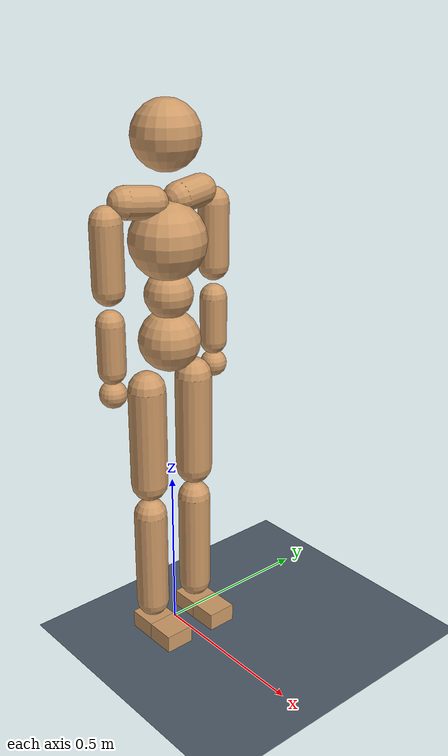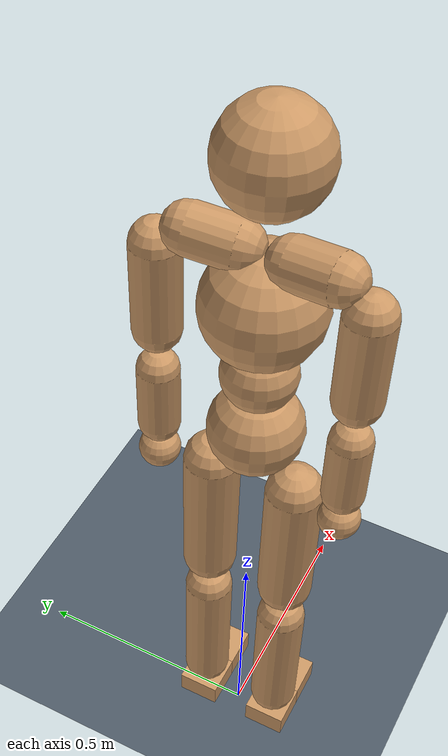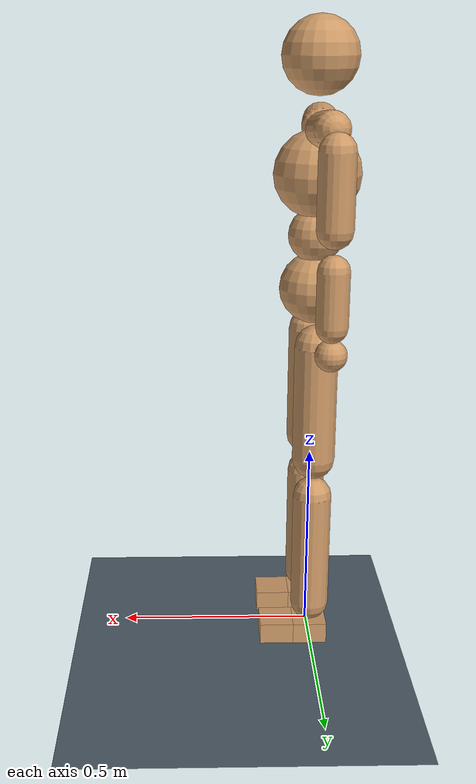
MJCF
<mujoco model="diffmimic humanoid open-diffloco port">
  <compiler angle="degree" coordinate="local" inertiafromgeom="false"
            eulerseq="xyz"/>

  <option timestep="0.004" gravity="0 0 -9.81" integrator="Euler"
          cone="pyramidal" impratio="100" iterations="1" ls_iterations="5">
    <flag eulerdamp="disable"/>
  </option>

  <default>
    <geom contype="2" conaffinity="1" condim="3"
          friction="1 0.005 0.0001" rgba="0.8 0.6 0.4 1"/>
    <joint type="hinge" limited="true" armature="0" stiffness="0"/>
    <position ctrllimited="false"/>
  </default>

  <worldbody>
    <geom name="floor" type="plane" pos="0 0 0" size="40 40 0.1"
          contype="1" conaffinity="1" condim="3"
          friction="1 0.005 0.0001" rgba="0.3 0.35 0.4 1"/>

    <body name="pelvis" pos="0 0 0.88">
      <freejoint name="root"/>
      <inertial pos="0 0 0" mass="10.0" diaginertia="1 1 1"/>
      <geom name="pelvis_lower" type="sphere" pos="0 0 0.07" size="0.09"/>
      <geom name="pelvis_upper" type="sphere" pos="0 0 0.205" size="0.07"/>

      <body name="torso" pos="0 0 0.236151">
        <joint name="spine1_x" axis="1 0 0" range="-180 180" damping="100"/>
        <joint name="spine1_y" axis="0 1 0" range="-180 180" damping="100"/>
        <joint name="spine1_z" axis="0 0 1" range="-180 180" damping="100"/>
        <inertial pos="0 0 0" mass="12.002052" diaginertia="1 1 1"/>
        <geom name="torso_core" type="sphere" pos="0 0 0.12" size="0.11"/>
        <geom name="torso_shoulder_r" type="capsule"
              pos="-0.01142375 -0.08697725 0.23320685"
              euler="83.8885 -7.4404535 -6.6881237"
              size="0.045 0.04178709"/>
        <geom name="torso_shoulder_l" type="capsule"
              pos="-0.01142375 0.08697725 0.23320685"
              euler="-83.8885 -7.4404535 6.6881237"
              size="0.045 0.04178709"/>

        <body name="head" pos="0 0 0.223894">
          <joint name="neck_x" axis="1 0 0" range="-180 180" damping="10"/>
          <joint name="neck_y" axis="0 1 0" range="-180 180" damping="10"/>
          <joint name="neck_z" axis="0 0 1" range="-180 180" damping="10"/>
          <inertial pos="0 0 0" mass="3.8822644" diaginertia="1 1 1"/>
          <geom name="head_geom" type="sphere" pos="0 0 0.175" size="0.095"/>
        </body>

        <body name="right_upper_arm" pos="-0.02405 -0.18311 0.2435">
          <joint name="right_shoulder_x" axis="1 0 0"
                 range="-180 180" damping="40"/>
          <joint name="right_shoulder_y" axis="0 1 0"
                 range="-180 180" damping="40"/>
          <joint name="right_shoulder_z" axis="0 0 1"
                 range="-180 180" damping="40"/>
          <inertial pos="0 0 0" mass="1.4993314" diaginertia="1 1 1"/>
          <geom name="right_upper_arm_geom" type="capsule"
                pos="0 0 -0.14" size="0.045 0.09"/>
          <body name="right_lower_arm" pos="0 0 -0.274788">
            <joint name="right_elbow" axis="0 1 0"
                   range="-160 -2" damping="30"/>
            <inertial pos="0 0 0" mass="1.5" diaginertia="1 1 1"/>
            <geom name="right_lower_arm_geom" type="capsule"
                  pos="0 0 -0.12" size="0.04 0.0675"/>
            <geom name="right_hand" type="sphere"
                  pos="0 0 -0.258947" size="0.04"/>
          </body>
        </body>

        <body name="left_upper_arm" pos="-0.02405 0.18311 0.2435">
          <joint name="left_shoulder_x" axis="1 0 0"
                 range="-180 180" damping="40"/>
          <joint name="left_shoulder_y" axis="0 1 0"
                 range="-180 180" damping="40"/>
          <joint name="left_shoulder_z" axis="0 0 1"
                 range="-180 180" damping="40"/>
          <inertial pos="0 0 0" mass="1.4993314" diaginertia="1 1 1"/>
          <geom name="left_upper_arm_geom" type="capsule"
                pos="0 0 -0.14" size="0.045 0.09"/>
          <body name="left_lower_arm" pos="0 0 -0.274788">
            <joint name="left_elbow" axis="0 1 0"
                   range="-160 -2" damping="30"/>
            <inertial pos="0 0 0" mass="1.5" diaginertia="1 1 1"/>
            <geom name="left_lower_arm_geom" type="capsule"
                  pos="0 0 -0.12" size="0.04 0.0675"/>
            <geom name="left_hand" type="sphere"
                  pos="0 0 -0.258947" size="0.04"/>
          </body>
        </body>
      </body>

      <body name="right_thigh" pos="0 -0.084887 0">
        <joint name="right_hip_x" axis="1 0 0"
               range="-180 180" damping="50"/>
        <joint name="right_hip_y" axis="0 1 0"
               range="-180 180" damping="50"/>
        <joint name="right_hip_z" axis="0 0 1"
               range="-180 180" damping="50"/>
        <inertial pos="0 0 0" mass="4.5022917" diaginertia="1 1 1"/>
        <geom name="right_thigh_geom" type="capsule"
              pos="0 0 -0.21" size="0.055 0.15"/>
        <body name="right_shin" pos="0 0 -0.421546">
          <joint name="right_knee" axis="0 1 0" range="2 160" damping="50"/>
          <inertial pos="0 0 0" mass="2.9997497" diaginertia="1 1 1"/>
          <geom name="right_shin_geom" type="capsule"
                pos="0 0 -0.2" size="0.05 0.155"/>
          <body name="right_foot" pos="0 0 -0.40987">
            <joint name="right_ankle_x" axis="1 0 0"
                   range="-180 180" damping="40"/>
            <joint name="right_ankle_y" axis="0 1 0"
                   range="-180 180" damping="40"/>
            <joint name="right_ankle_z" axis="0 0 1"
                   range="-180 180" damping="40"/>
            <inertial pos="0 0 0" mass="0.99968714" diaginertia="1 1 1"/>
            <geom name="FR" type="box" pos="0.08925 0 -0.0225"
                  size="0.04425 0.045 0.0275"/>
            <geom name="RR" type="box" pos="0.00075 0 -0.0225"
                  size="0.04425 0.045 0.0275"/>
            <site name="FR" pos="0.08925 0 -0.05" size="0.005"/>
            <site name="RR" pos="0.00075 0 -0.05" size="0.005"/>
          </body>
        </body>
      </body>

      <body name="left_thigh" pos="0 0.084887 0">
        <joint name="left_hip_x" axis="1 0 0"
               range="-180 180" damping="50"/>
        <joint name="left_hip_y" axis="0 1 0"
               range="-180 180" damping="50"/>
        <joint name="left_hip_z" axis="0 0 1"
               range="-180 180" damping="50"/>
        <inertial pos="0 0 0" mass="4.5022917" diaginertia="1 1 1"/>
        <geom name="left_thigh_geom" type="capsule"
              pos="0 0 -0.21" size="0.055 0.15"/>
        <body name="left_shin" pos="0 0 -0.421546">
          <joint name="left_knee" axis="0 1 0" range="2 160" damping="50"/>
          <inertial pos="0 0 0" mass="2.9997497" diaginertia="1 1 1"/>
          <geom name="left_shin_geom" type="capsule"
                pos="0 0 -0.2" size="0.05 0.155"/>
          <body name="left_foot" pos="0 0 -0.40987">
            <joint name="left_ankle_x" axis="1 0 0"
                   range="-180 180" damping="40"/>
            <joint name="left_ankle_y" axis="0 1 0"
                   range="-180 180" damping="40"/>
            <joint name="left_ankle_z" axis="0 0 1"
                   range="-180 180" damping="40"/>
            <inertial pos="0 0 0" mass="0.99968714" diaginertia="1 1 1"/>
            <geom name="FL" type="box" pos="0.08925 0 -0.0225"
                  size="0.04425 0.045 0.0275"/>
            <geom name="RL" type="box" pos="0.00075 0 -0.0225"
                  size="0.04425 0.045 0.0275"/>
            <site name="FL" pos="0.08925 0 -0.05" size="0.005"/>
            <site name="RL" pos="0.00075 0 -0.05" size="0.005"/>
          </body>
        </body>
      </body>
    </body>
  </worldbody>

  <contact>
    <pair name="thigh_pair" geom1="right_thigh_geom" geom2="left_thigh_geom"
          condim="3" friction="1 0.005 0.0001"/>
    <pair name="shin_pair" geom1="right_shin_geom" geom2="left_shin_geom"
          condim="3" friction="1 0.005 0.0001"/>
  </contact>

  <actuator>
    <position name="spine1_x" joint="spine1_x" kp="1000"/>
    <position name="spine1_y" joint="spine1_y" kp="1000"/>
    <position name="spine1_z" joint="spine1_z" kp="1000"/>
    <position name="neck_x" joint="neck_x" kp="100"/>
    <position name="neck_y" joint="neck_y" kp="100"/>
    <position name="neck_z" joint="neck_z" kp="100"/>
    <position name="right_shoulder_x" joint="right_shoulder_x" kp="400"/>
    <position name="right_shoulder_y" joint="right_shoulder_y" kp="400"/>
    <position name="right_shoulder_z" joint="right_shoulder_z" kp="400"/>
    <position name="right_elbow" joint="right_elbow" kp="300"/>
    <position name="left_shoulder_x" joint="left_shoulder_x" kp="400"/>
    <position name="left_shoulder_y" joint="left_shoulder_y" kp="400"/>
    <position name="left_shoulder_z" joint="left_shoulder_z" kp="400"/>
    <position name="left_elbow" joint="left_elbow" kp="300"/>
    <position name="right_hip_x" joint="right_hip_x" kp="500"/>
    <position name="right_hip_y" joint="right_hip_y" kp="500"/>
    <position name="right_hip_z" joint="right_hip_z" kp="500"/>
    <position name="right_knee" joint="right_knee" kp="500"/>
    <position name="right_ankle_x" joint="right_ankle_x" kp="400"/>
    <position name="right_ankle_y" joint="right_ankle_y" kp="400"/>
    <position name="right_ankle_z" joint="right_ankle_z" kp="400"/>
    <position name="left_hip_x" joint="left_hip_x" kp="500"/>
    <position name="left_hip_y" joint="left_hip_y" kp="500"/>
    <position name="left_hip_z" joint="left_hip_z" kp="500"/>
    <position name="left_knee" joint="left_knee" kp="500"/>
    <position name="left_ankle_x" joint="left_ankle_x" kp="400"/>
    <position name="left_ankle_y" joint="left_ankle_y" kp="400"/>
    <position name="left_ankle_z" joint="left_ankle_z" kp="400"/>
  </actuator>

  <keyframe>
    <key name="home"
         qpos="0 0 0.88 1 0 0 0
               0 0 0  0 0 0  0 0 0  -0.034906585
               0 0 0  -0.034906585  0 0 0  0.034906585  0 0 0
               0 0 0  0.034906585  0 0 0"/>
  </keyframe>
</mujoco>
